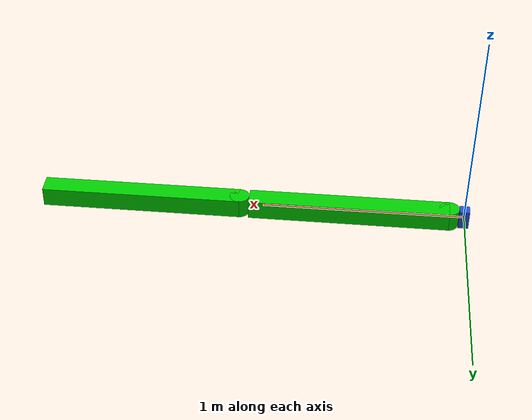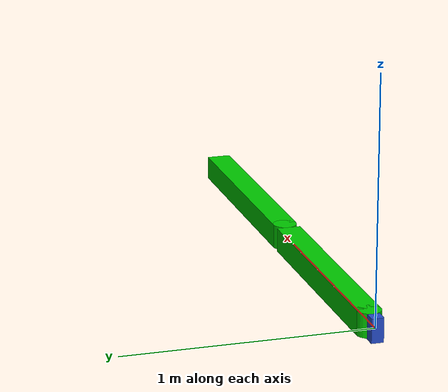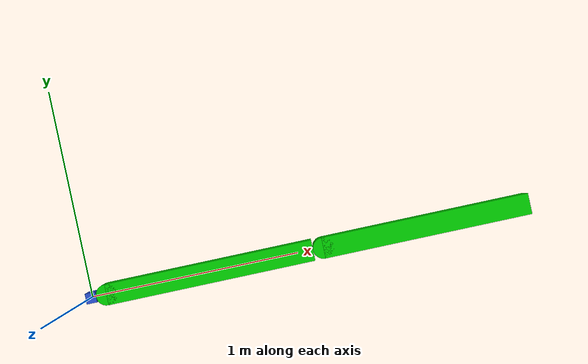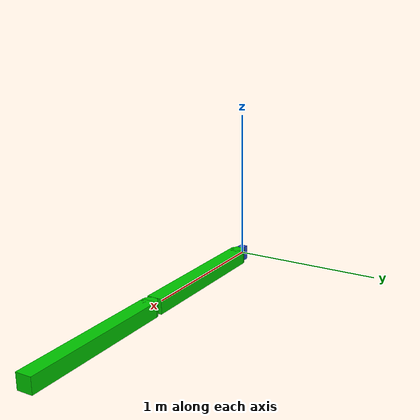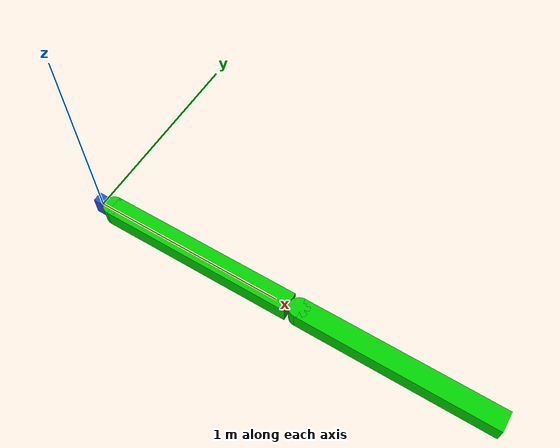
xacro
<?xml version="1.0"?>

<robot name="manipulator" xmlns:xacro="http://www.ros.org/wiki/xacro">

<xacro:include filename="$(find 3DOF)/model/transmissions.xacro" />
<xacro:include filename="$(find 3DOF)/model/manipulator.gazebo" />
<xacro:include filename="$(find 3DOF)/model/link_dimensions.xacro" />
<xacro:include filename="$(find 3DOF)/model/physics.xacro" />
<xacro:include filename="$(find pr2_description)/urdf/sensors/hokuyo_lx30_laser.urdf.xacro" />

<link name="base_link">
    <visual>
      <origin xyz="0 0 0"/>
	   <geometry>
	     <box size="0.05 0.05 ${HEIGHT}" />
	   </geometry>
	   <material name="blue" />
    </visual>
    <collision>
      <geometry>
        <box size="0.05 0.05 0.05" />
      </geometry>
    </collision>
    <inertial>
        <origin xyz="0 0 0" rpy="0 0 0" />
        <mass value="1000000.0" />
        <inertia
            ixx="${ixx}" ixy="${ixy}" ixz="${ixz}"
                 iyy="${iyy}" iyz="${iyz}"
                 izz="${izz}" />
        </inertial>
</link>

<joint name="joint1_fixed" type="fixed">
		<axis xyz="0 0 1"/>
		<parent link="base_link"/>
		<child link="cylinder1"/>
		<origin rpy="0.0 0.0 0.0" xyz="0.025 0 0"/>
		<limit effort="${effort}" velocity="${velocity}" lower="${lower_bound}" upper="${upper_bound}"/>
                <dynamics damping="${damping}" />
</joint>

<link name="cylinder1">
		<visual>
			<origin rpy="0.0 0.0 0.0" xyz="${RADIUS} 0 0"/>
			<geometry>
				<cylinder length="${HEIGHT}" radius="${RADIUS}" />
			</geometry>
			<material name="green">
				<color rgba="0 .8 0 1"/>
			</material>
		</visual>
		<collision>
			<origin rpy="0.0 0.0 0.0" xyz="${RADIUS} 0 0"/>
			<geometry>
				<cylinder length="${HEIGHT}" radius="${RADIUS}" />
			</geometry>
		</collision>
                <inertial>
                        <origin xyz="0 0 0" rpy="0 0 0"/>
                        <mass value="${coxa_mass}" />
                        <inertia ixx="${ixx}" ixy="${ixy}" ixz="${ixz}"
                 iyy="${iyy}" iyz="${iyz}"
                 izz="${izz}" />
                </inertial>
</link>

<joint name="joint1" type="revolute">
		<axis xyz="0 0 1"/>
		<parent link="cylinder1"/>
		<child link="link1"/>
		<origin rpy="0.0 0.0 0.0" xyz="${RADIUS} 0 0"/>
		<limit effort="${effort}" velocity="${velocity}" lower="${lower_bound}" upper="${upper_bound}"/>
                <dynamics damping="${damping}" />
</joint>

<link name="link1">
		<visual>
			<origin rpy="0.0 0.0 0.0" xyz="${LENGTH / 2.0} 0 0"/>
			<geometry>
			        <box size="${LENGTH} ${WIDTH} ${HEIGHT}" />
			</geometry>
			<material name="green">
				<color rgba="0 .8 0 1"/>
			</material>
		</visual>
		<collision>
			<origin rpy="0.0 0.0 0.0" xyz="${0.01 + (LENGTH / 2.0)} 0 0"/>
			<geometry>
				<box size="${LENGTH} ${WIDTH} ${HEIGHT}" />
			</geometry>
		</collision>
                <inertial>
                        <origin xyz="0 0 0" rpy="0 0 0"/>
                        <mass value="${coxa_mass}" />
                        <inertia ixx="${ixx}" ixy="${ixy}" ixz="${ixz}"
                 iyy="${iyy}" iyz="${iyz}"
                 izz="${izz}" />
                </inertial>
</link>

<joint name="joint2_fixed" type="fixed">
		<axis xyz="0 0 1"/>
		<parent link="link1"/>
		<child link="cylinder2"/>
		<origin rpy="0.0 0.0 0.0" xyz="${LENGTH} 0 0"/>
		<limit effort="${effort}" velocity="${velocity}" lower="${lower_bound}" upper="${upper_bound}"/>
                <dynamics damping="${damping}" />
</joint>

<link name="cylinder2">
		<visual>
			<origin rpy="0.0 0.0 0.0" xyz="${RADIUS} 0 0"/>
			<geometry>
				<cylinder length="${HEIGHT}" radius="${RADIUS}" />
			</geometry>
			<material name="green">
				<color rgba="0 .8 0 1"/>
			</material>
		</visual>
		<collision>
			<origin rpy="0.0 0.0 0.0" xyz="${RADIUS} 0 0"/>
			<geometry>
				<cylinder length="${HEIGHT}" radius="${RADIUS}" />
			</geometry>
		</collision>
                <inertial>
                        <origin xyz="0 0 0" rpy="0 0 0"/>
                        <mass value="${coxa_mass}" />
                        <inertia ixx="${ixx}" ixy="${ixy}" ixz="${ixz}"
                 iyy="${iyy}" iyz="${iyz}"
                 izz="${izz}" />
                </inertial>
</link>

<joint name="joint2" type="revolute">
		<axis xyz="0 0 1"/>
		<parent link="cylinder2"/>
		<child link="link2"/>
		<origin rpy="0.0 0.0 0.0" xyz="${RADIUS} 0 0"/>
		<limit effort="${effort}" velocity="${velocity}" lower="${lower_bound}" upper="${upper_bound}"/>
                <dynamics damping="${damping}" />
</joint>

<link name="link2">
		<visual>
			<origin rpy="0.0 0.0 0.0" xyz="${LENGTH / 2.0} 0 0"/>
			<geometry>
			        <box size="${LENGTH} ${WIDTH} ${HEIGHT}" />
			</geometry>
			<material name="green">
				<color rgba="0 .8 0 1"/>
			</material>
		</visual>
		<collision>
			<origin rpy="0.0 0.0 0.0" xyz="${0.01 + (LENGTH / 2.0)} 0 0"/>
			<geometry>
				<box size="${LENGTH} ${WIDTH} ${HEIGHT}" />
			</geometry>
		</collision>
                <inertial>
                        <origin xyz="0 0 0" rpy="0 0 0"/>
                        <mass value="${coxa_mass}" />
                        <inertia ixx="${ixx}" ixy="${ixy}" ixz="${ixz}"
                 iyy="${iyy}" iyz="${iyz}"
                 izz="${izz}" />
                </inertial>
</link>

</robot>

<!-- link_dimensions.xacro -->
<robot xmlns:xacro="http://www.ros.org/wiki/xacro">
    <!-- Constants -->
    <xacro:property name="LENGTH" value="1.0"/>
    <xacro:property name="WIDTH" value="0.1"/>
    <xacro:property name="HEIGHT" value="0.1"/>
    <xacro:property name="RADIUS" value="${WIDTH / 2.0}"/>
</robot>
